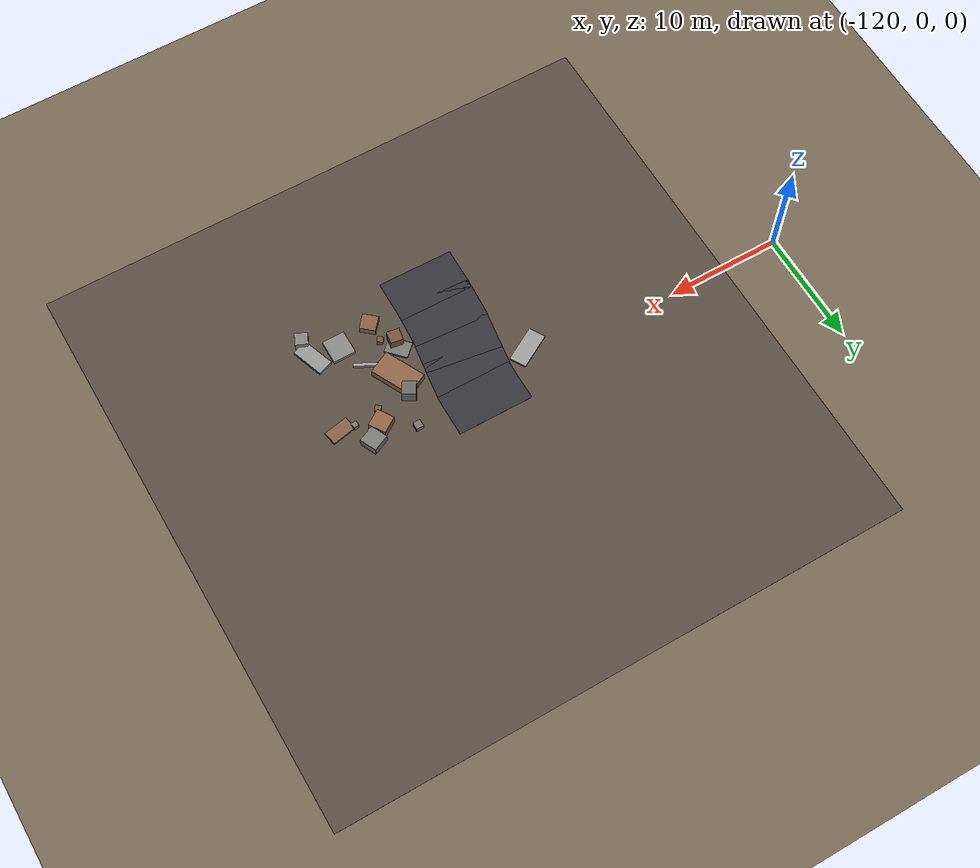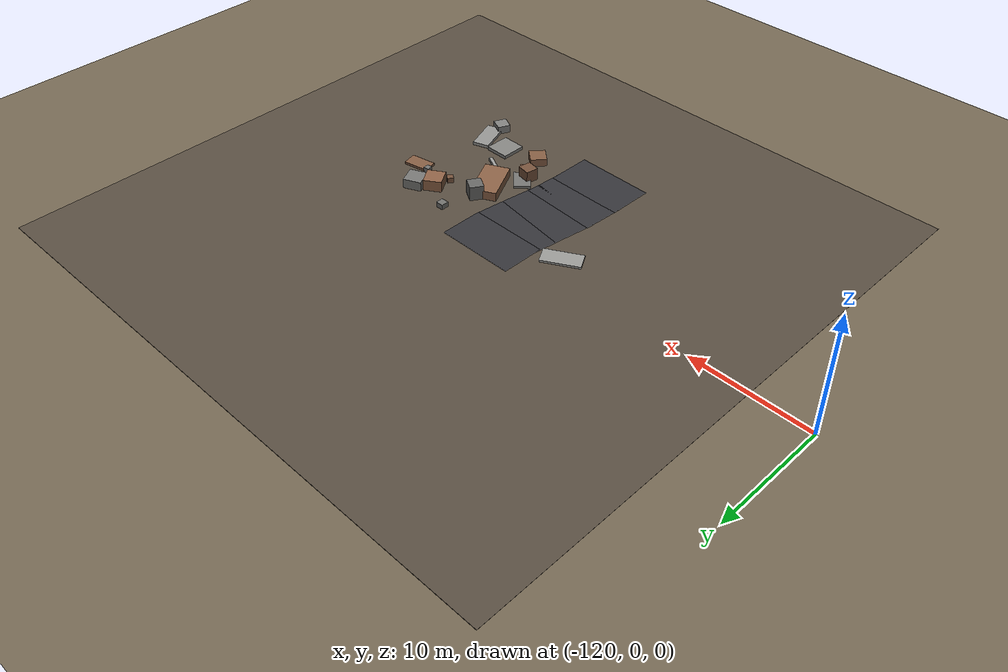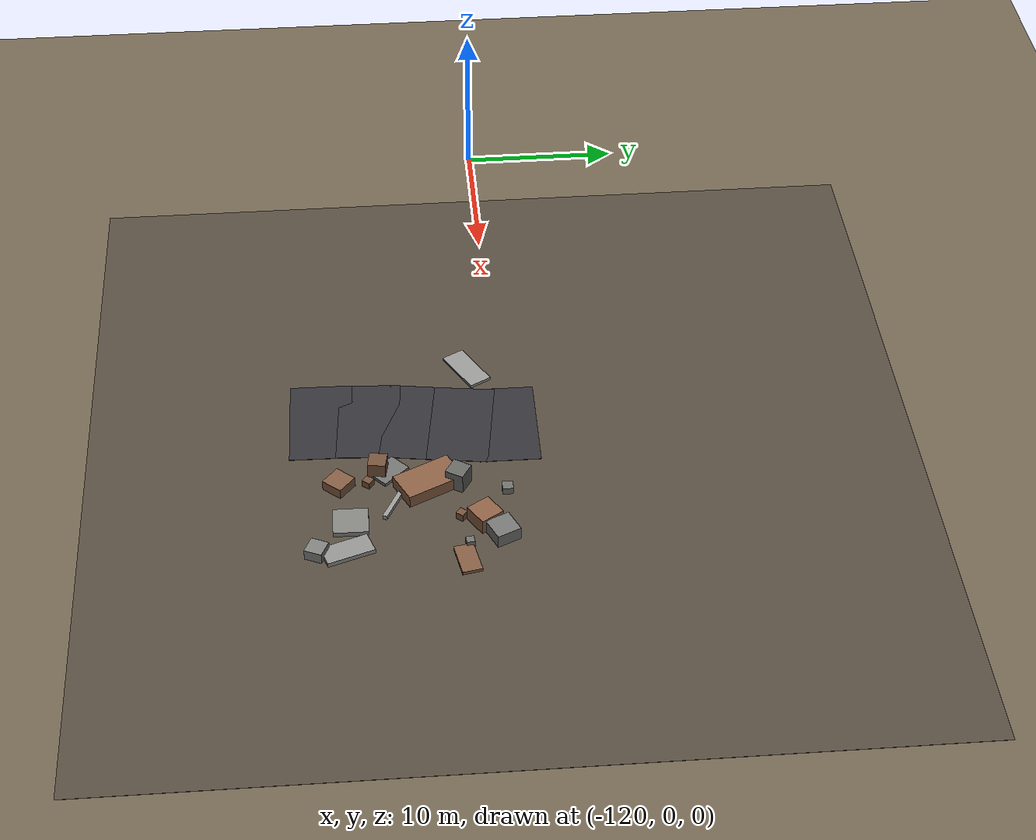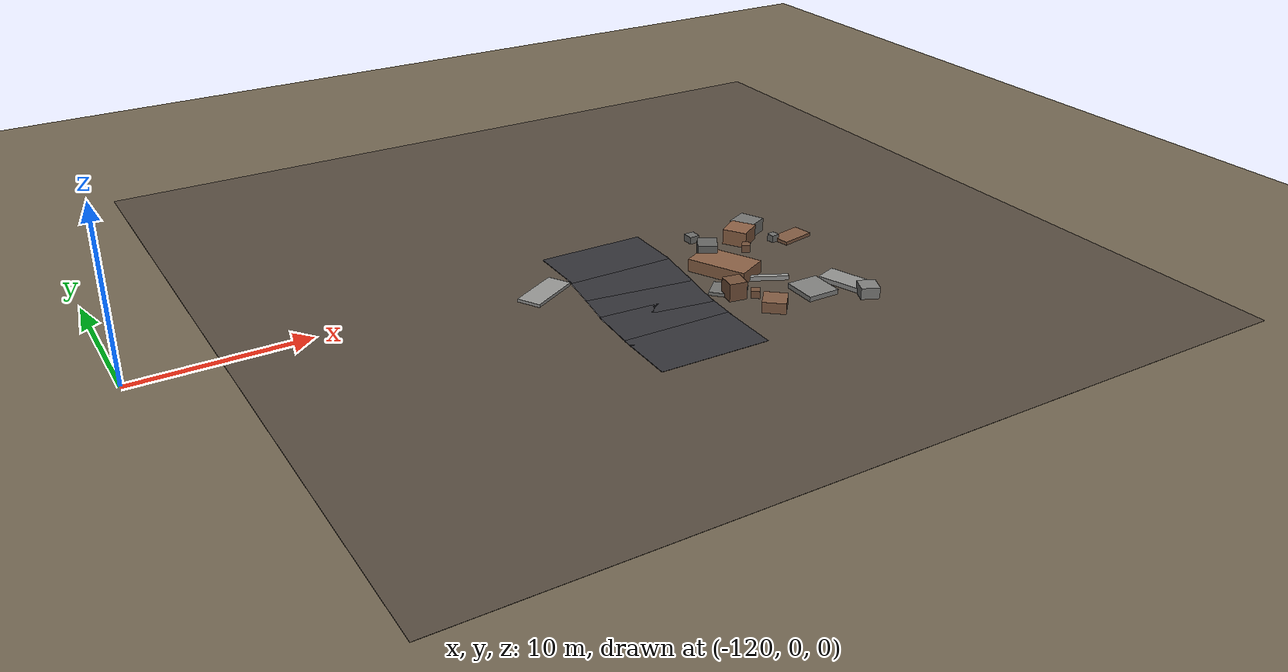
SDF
<sdf version="1.6">
 <world name="navitas_arena">
  <model name="ground_plane">
   <static>true</static>
   <link name="link">
    <collision name="collision">
     <geometry><plane><normal>0 0 1</normal><size>400 400</size></plane></geometry>
     <surface><friction><ode><mu>0.550</mu><mu2>0.550</mu2></ode></friction></surface>
    </collision>
    <visual name="visual">
     <cast_shadows>false</cast_shadows>
     <geometry><plane><normal>0 0 1</normal><size>400 400</size></plane></geometry>
     <material><ambient>0.450 0.400 0.320 1</ambient><diffuse>0.450 0.400 0.320 1</diffuse></material>
    </visual>
   </link>
  </model>
  <model name="gd_kolay">
   <static>true</static>
   <pose>-90.000 0.000 0.010 0 0 0.000</pose>
   <link name="link">
    <collision name="col"><geometry><box><size>50.000 50.000 0.020</size></box></geometry></collision>
    <visual name="vis">
     <geometry><box><size>50.000 50.000 0.020</size></box></geometry>
     <material><ambient>0.34 0.30 0.25 1</ambient><diffuse>0.34 0.30 0.25 1</diffuse></material>
    </visual>
   </link>
  </model>
  <model name="road_kolay_2_4">
   <static>true</static>
   <pose>-92.841 -10.910 0.040 0 0 1.556</pose>
   <link name="link">
    <collision name="col"><geometry><box><size>3.840 6.600 0.020</size></box></geometry></collision>
    <visual name="vis">
     <geometry><box><size>3.840 6.600 0.020</size></box></geometry>
     <material><ambient>0.20 0.20 0.22 1</ambient><diffuse>0.20 0.20 0.22 1</diffuse></material>
    </visual>
   </link>
  </model>
  <model name="road_kolay_2_5">
   <static>true</static>
   <pose>-92.729 -8.020 0.040 0 0 1.507</pose>
   <link name="link">
    <collision name="col"><geometry><box><size>3.746 6.600 0.020</size></box></geometry></collision>
    <visual name="vis">
     <geometry><box><size>3.746 6.600 0.020</size></box></geometry>
     <material><ambient>0.20 0.20 0.22 1</ambient><diffuse>0.20 0.20 0.22 1</diffuse></material>
    </visual>
   </link>
  </model>
  <model name="road_kolay_2_6">
   <static>true</static>
   <pose>-92.428 -5.200 0.040 0 0 1.422</pose>
   <link name="link">
    <collision name="col"><geometry><box><size>3.731 6.600 0.020</size></box></geometry></collision>
    <visual name="vis">
     <geometry><box><size>3.731 6.600 0.020</size></box></geometry>
     <material><ambient>0.20 0.20 0.22 1</ambient><diffuse>0.20 0.20 0.22 1</diffuse></material>
    </visual>
   </link>
  </model>
  <model name="road_kolay_2_7">
   <static>true</static>
   <pose>-92.028 -2.400 0.040 0 0 1.436</pose>
   <link name="link">
    <collision name="col"><geometry><box><size>3.726 6.600 0.020</size></box></geometry></collision>
    <visual name="vis">
     <geometry><box><size>3.726 6.600 0.020</size></box></geometry>
     <material><ambient>0.20 0.20 0.22 1</ambient><diffuse>0.20 0.20 0.22 1</diffuse></material>
    </visual>
   </link>
  </model>
  <model name="road_kolay_2_8">
   <static>true</static>
   <pose>-91.830 0.400 0.040 0 0 1.565</pose>
   <link name="link">
    <collision name="col"><geometry><box><size>3.700 6.600 0.020</size></box></geometry></collision>
    <visual name="vis">
     <geometry><box><size>3.700 6.600 0.020</size></box></geometry>
     <material><ambient>0.20 0.20 0.22 1</ambient><diffuse>0.20 0.20 0.22 1</diffuse></material>
    </visual>
   </link>
  </model>
  <model name="deb_kolay_1">
   <static>true</static>
   <pose>-87.062 -8.213 0.230 0 0 0.934</pose>
   <link name="link">
    <collision name="col"><geometry><box><size>0.520 0.520 0.460</size></box></geometry></collision>
    <visual name="vis">
     <geometry><box><size>0.520 0.520 0.460</size></box></geometry>
     <material><ambient>0.46 0.32 0.23 1</ambient><diffuse>0.46 0.32 0.23 1</diffuse></material>
    </visual>
   </link>
  </model>
  <model name="deb_kolay_17">
   <static>true</static>
   <pose>-81.506 -11.334 0.349 0 0 2.716</pose>
   <link name="link">
    <collision name="col"><geometry><box><size>1.091 1.091 0.698</size></box></geometry></collision>
    <visual name="vis">
     <geometry><box><size>1.091 1.091 0.698</size></box></geometry>
     <material><ambient>0.50 0.50 0.49 1</ambient><diffuse>0.50 0.50 0.49 1</diffuse></material>
    </visual>
   </link>
  </model>
  <model name="deb_kolay_27">
   <static>true</static>
   <pose>-83.856 -9.332 0.158 0 0 1.562</pose>
   <link name="link">
    <collision name="col"><geometry><box><size>2.085 1.971 0.316</size></box></geometry></collision>
    <visual name="vis">
     <geometry><box><size>2.085 1.971 0.316</size></box></geometry>
     <material><ambient>0.51 0.51 0.50 1</ambient><diffuse>0.51 0.51 0.50 1</diffuse></material>
    </visual>
   </link>
  </model>
  <model name="deb_kolay_37">
   <static>true</static>
   <pose>-85.981 -0.010 0.232 0 0 1.579</pose>
   <link name="link">
    <collision name="col"><geometry><box><size>0.647 0.647 0.463</size></box></geometry></collision>
    <visual name="vis">
     <geometry><box><size>0.647 0.647 0.463</size></box></geometry>
     <material><ambient>0.43 0.43 0.42 1</ambient><diffuse>0.43 0.43 0.42 1</diffuse></material>
    </visual>
   </link>
  </model>
  <model name="deb_kolay_39">
   <static>true</static>
   <pose>-86.751 -2.891 0.194 0 0 0.298</pose>
   <link name="link">
    <collision name="col"><geometry><box><size>0.632 0.632 0.388</size></box></geometry></collision>
    <visual name="vis">
     <geometry><box><size>0.632 0.632 0.388</size></box></geometry>
     <material><ambient>0.52 0.52 0.51 1</ambient><diffuse>0.52 0.52 0.51 1</diffuse></material>
    </visual>
   </link>
  </model>
  <model name="deb_kolay_47">
   <static>true</static>
   <pose>-80.412 -2.731 0.114 0 0 0.189</pose>
   <link name="link">
    <collision name="col"><geometry><box><size>2.134 1.189 0.227</size></box></geometry></collision>
    <visual name="vis">
     <geometry><box><size>2.134 1.189 0.227</size></box></geometry>
     <material><ambient>0.51 0.36 0.26 1</ambient><diffuse>0.51 0.36 0.26 1</diffuse></material>
    </visual>
   </link>
  </model>
  <model name="deb_kolay_59">
   <static>true</static>
   <pose>-88.099 -7.601 0.546 0 0 2.970</pose>
   <link name="link">
    <collision name="col"><geometry><box><size>1.082 1.082 1.092</size></box></geometry></collision>
    <visual name="vis">
     <geometry><box><size>1.082 1.082 1.092</size></box></geometry>
     <material><ambient>0.46 0.32 0.23 1</ambient><diffuse>0.46 0.32 0.23 1</diffuse></material>
    </visual>
   </link>
  </model>
  <model name="deb_kolay_65">
   <static>true</static>
   <pose>-97.095 -1.714 0.102 0 0 0.512</pose>
   <link name="link">
    <collision name="col"><geometry><box><size>3.218 1.462 0.204</size></box></geometry></collision>
    <visual name="vis">
     <geometry><box><size>3.218 1.462 0.204</size></box></geometry>
     <material><ambient>0.59 0.59 0.58 1</ambient><diffuse>0.59 0.59 0.58 1</diffuse></material>
    </visual>
   </link>
  </model>
  <model name="deb_kolay_66">
   <static>true</static>
   <pose>-86.775 -2.870 0.634 0 0 2.600</pose>
   <link name="link">
    <collision name="col"><geometry><box><size>1.165 1.165 1.269</size></box></geometry></collision>
    <visual name="vis">
     <geometry><box><size>1.165 1.165 1.269</size></box></geometry>
     <material><ambient>0.40 0.40 0.39 1</ambient><diffuse>0.40 0.40 0.39 1</diffuse></material>
    </visual>
   </link>
  </model>
  <model name="deb_kolay_68">
   <static>true</static>
   <pose>-81.582 -9.568 0.150 0 0 1.904</pose>
   <link name="link">
    <collision name="col"><geometry><box><size>2.903 1.385 0.300</size></box></geometry></collision>
    <visual name="vis">
     <geometry><box><size>2.903 1.385 0.300</size></box></geometry>
     <material><ambient>0.57 0.57 0.56 1</ambient><diffuse>0.57 0.57 0.56 1</diffuse></material>
    </visual>
   </link>
  </model>
  <model name="deb_kolay_73">
   <static>true</static>
   <pose>-83.504 -1.516 0.488 0 0 2.142</pose>
   <link name="link">
    <collision name="col"><geometry><box><size>1.518 1.518 0.976</size></box></geometry></collision>
    <visual name="vis">
     <geometry><box><size>1.518 1.518 0.976</size></box></geometry>
     <material><ambient>0.55 0.38 0.27 1</ambient><diffuse>0.55 0.38 0.27 1</diffuse></material>
    </visual>
   </link>
  </model>
  <model name="deb_kolay_87">
   <static>true</static>
   <pose>-85.349 -6.701 0.143 0 0 2.672</pose>
   <link name="link">
    <collision name="col"><geometry><box><size>2.801 0.287 0.285</size></box></geometry></collision>
    <visual name="vis">
     <geometry><box><size>2.801 0.287 0.285</size></box></geometry>
     <material><ambient>0.60 0.60 0.59 1</ambient><diffuse>0.60 0.60 0.59 1</diffuse></material>
    </visual>
   </link>
  </model>
  <model name="deb_kolay_89">
   <static>true</static>
   <pose>-82.278 -0.562 0.426 0 0 0.429</pose>
   <link name="link">
    <collision name="col"><geometry><box><size>1.514 1.514 0.851</size></box></geometry></collision>
    <visual name="vis">
     <geometry><box><size>1.514 1.514 0.851</size></box></geometry>
     <material><ambient>0.46 0.46 0.45 1</ambient><diffuse>0.46 0.46 0.45 1</diffuse></material>
    </visual>
   </link>
  </model>
  <model name="deb_kolay_102">
   <static>true</static>
   <pose>-88.042 -6.953 0.114 0 0 2.327</pose>
   <link name="link">
    <collision name="col"><geometry><box><size>1.997 1.406 0.227</size></box></geometry></collision>
    <visual name="vis">
     <geometry><box><size>1.997 1.406 0.227</size></box></geometry>
     <material><ambient>0.45 0.45 0.44 1</ambient><diffuse>0.45 0.45 0.44 1</diffuse></material>
    </visual>
   </link>
  </model>
  <model name="deb_kolay_111">
   <static>true</static>
   <pose>-86.989 -9.944 0.335 0 0 0.858</pose>
   <link name="link">
    <collision name="col"><geometry><box><size>1.371 1.371 0.670</size></box></geometry></collision>
    <visual name="vis">
     <geometry><box><size>1.371 1.371 0.670</size></box></geometry>
     <material><ambient>0.51 0.36 0.26 1</ambient><diffuse>0.51 0.36 0.26 1</diffuse></material>
    </visual>
   </link>
  </model>
  <model name="deb_kolay_112">
   <static>true</static>
   <pose>-81.642 -2.515 0.235 0 0 0.125</pose>
   <link name="link">
    <collision name="col"><geometry><box><size>0.475 0.475 0.471</size></box></geometry></collision>
    <visual name="vis">
     <geometry><box><size>0.475 0.475 0.471</size></box></geometry>
     <material><ambient>0.44 0.44 0.43 1</ambient><diffuse>0.44 0.44 0.43 1</diffuse></material>
    </visual>
   </link>
  </model>
  <model name="deb_kolay_114">
   <static>true</static>
   <pose>-83.912 -2.855 0.241 0 0 0.918</pose>
   <link name="link">
    <collision name="col"><geometry><box><size>0.514 0.514 0.482</size></box></geometry></collision>
    <visual name="vis">
     <geometry><box><size>0.514 0.514 0.482</size></box></geometry>
     <material><ambient>0.46 0.32 0.23 1</ambient><diffuse>0.46 0.32 0.23 1</diffuse></material>
    </visual>
   </link>
  </model>
  <model name="chic_kolay_1">
   <static>true</static>
   <pose>-86.737 -4.652 0.400 0 0 2.031</pose>
   <link name="link">
    <collision name="col"><geometry><box><size>3.684 2.099 0.800</size></box></geometry></collision>
    <visual name="vis">
     <geometry><box><size>3.684 2.099 0.800</size></box></geometry>
     <material><ambient>0.54 0.38 0.27 1</ambient><diffuse>0.54 0.38 0.27 1</diffuse></material>
    </visual>
   </link>
  </model>
 </world>
</sdf>
